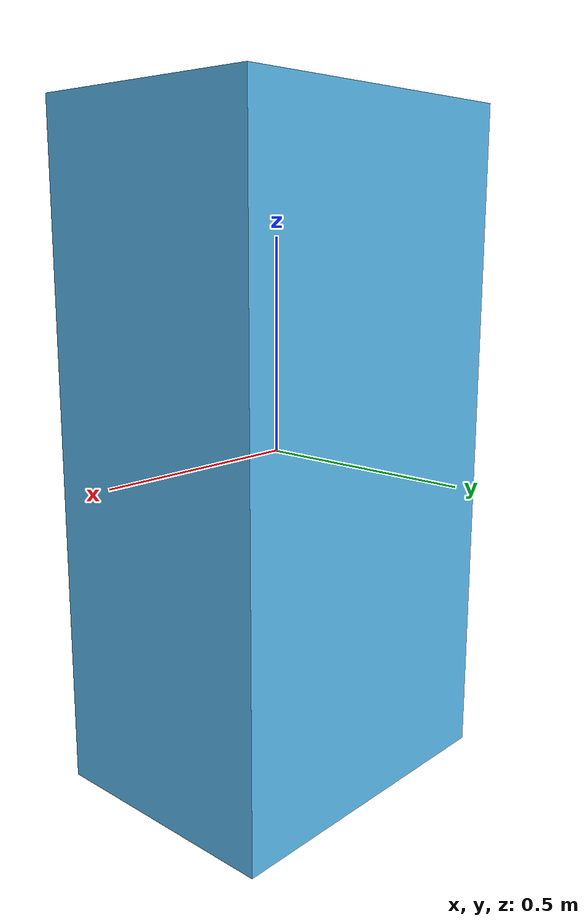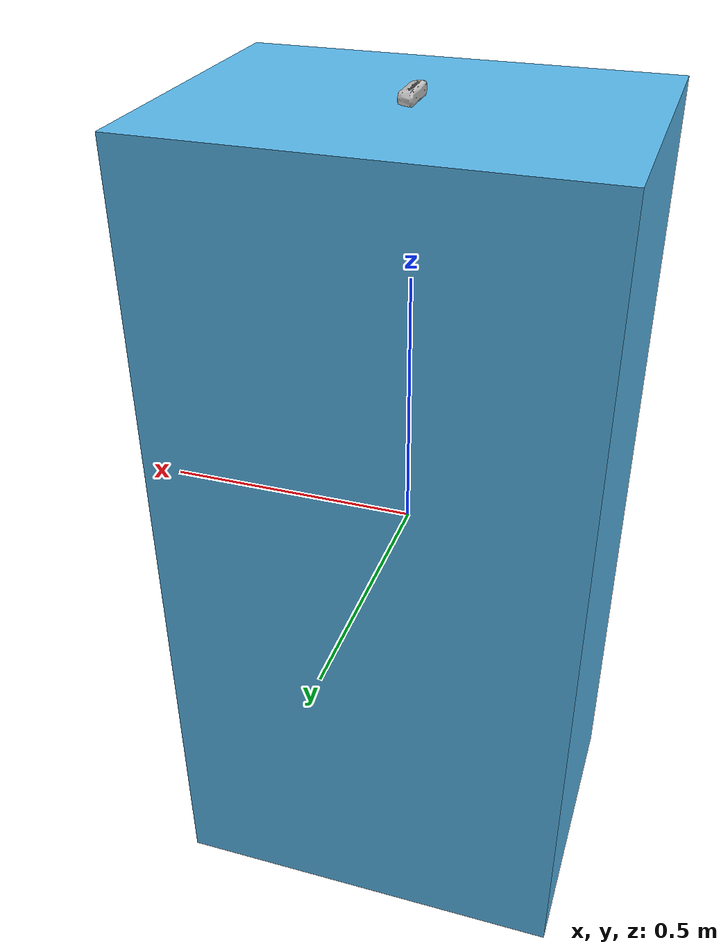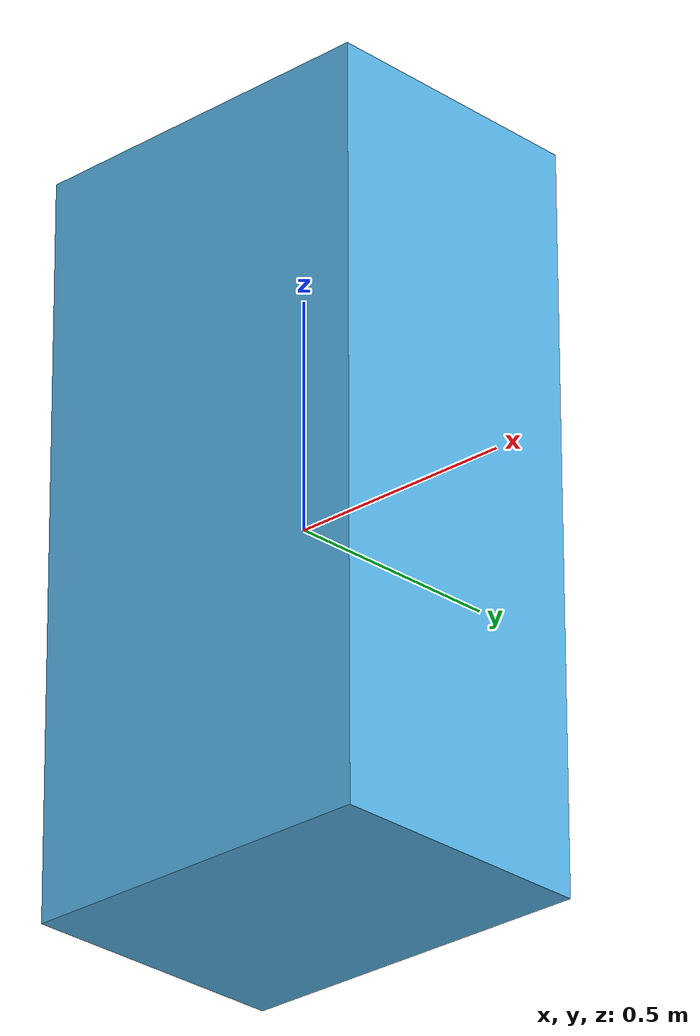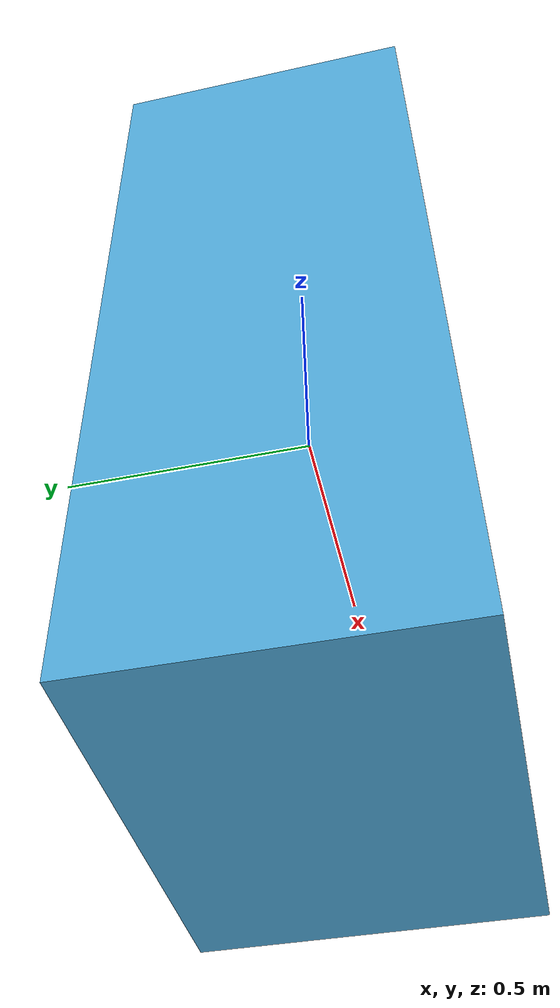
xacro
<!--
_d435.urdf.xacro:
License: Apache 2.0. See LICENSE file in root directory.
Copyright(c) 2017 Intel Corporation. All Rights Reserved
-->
<?xml version="1.0"?>
<robot name="test_flat_plate_camera_bracket" xmlns:xacro="http://ros.org/wiki/xacro">
  <xacro:include filename="$(find flat_plate_camera_bracket_description)/urdf/flat_plate_camera_bracket.urdf.xacro"/>
  <xacro:include filename="$(find realsense2_description)/urdf/_d435.urdf.xacro"/>
  <link name="world"/>
  <joint name="world_to_base" type="fixed"><parent link="world"/><child link="base_link"/></joint>
  <xacro:sensor_d435 parent="camera_mount_link" use_nominal_extrinsics="true"><origin xyz="0 0 0" rpy="0 0 0"/></xacro:sensor_d435>
</robot>

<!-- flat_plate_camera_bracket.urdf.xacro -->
<robot name="flat_plate_camera_bracket" xmlns:xacro="http://ros.org/wiki/xacro">
  <link name="base_link"/>
  <link name="flat_plate_camera_bracket_body">
    <visual><geometry><mesh filename="package://flat_plate_camera_bracket_description/meshes/visual/flat_plate_camera_bracket.stl" scale="1 1 1"/></geometry></visual>
    <collision><geometry><mesh filename="package://flat_plate_camera_bracket_description/meshes/collision/flat_plate_camera_bracket.stl" scale="1 1 1"/></geometry></collision>
    <inertial><mass value="5.0"/><origin xyz="0 0 0"/><inertia ixx="0.2" ixy="0" ixz="0" iyy="0.2" iyz="0" izz="0.2"/></inertial>
  </link>
  <joint name="flat_plate_camera_bracket_base_joint" type="fixed"><parent link="base_link"/><child link="flat_plate_camera_bracket_body"/></joint>
  <link name="camera_mount_link"/>
  <joint name="flat_plate_camera_bracket_camera_mount_joint" type="fixed"><parent link="flat_plate_camera_bracket_body"/><child link="camera_mount_link"/><origin xyz="0 0 0.8" rpy="0 0 0"/></joint>
</robot>

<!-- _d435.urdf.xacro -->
<robot name="sensor_d435" xmlns:xacro="http://ros.org/wiki/xacro">
  <!-- Includes -->
  <!-- Use a relative include so tests do not require ROS package lookups -->
  <xacro:include filename="_materials.urdf.xacro" />

  <xacro:macro name="sensor_d435" params="parent *origin name:=camera use_nominal_extrinsics:=false">
    <xacro:property name="M_PI" value="3.1415926535897931" />

    <!-- The following values are approximate, and the camera node
     publishing TF values with actual calibrated camera extrinsic values -->
    <xacro:property name="d435_cam_depth_to_infra1_offset" value="0.0"/>
    <xacro:property name="d435_cam_depth_to_infra2_offset" value="-0.050"/>
    <xacro:property name="d435_cam_depth_to_color_offset" value="0.015"/>

    <!-- The following values model the aluminum peripherial case for the
  	D435 camera, with the camera joint represented by the actual
  	peripherial camera tripod mount -->
    <xacro:property name="d435_cam_width" value="0.090"/>
    <xacro:property name="d435_cam_height" value="0.025"/>
    <xacro:property name="d435_cam_depth" value="0.02505"/>
    <xacro:property name="d435_cam_mount_from_center_offset" value="0.0149"/>
    <!-- glass cover is 0.1 mm inwards from front aluminium plate -->
    <xacro:property name="d435_glass_to_front" value="0.1e-3"/>
    <!-- see datasheet Revision 007, Fig. 4-4 page 65 -->
    <xacro:property name="d435_zero_depth_to_glass" value="4.2e-3"/>
    <!-- convenience precomputation to avoid clutter-->
    <xacro:property name="d435_mesh_x_offset" value="${d435_cam_mount_from_center_offset-d435_glass_to_front-d435_zero_depth_to_glass}"/>

    <!-- The following offset is relative the the physical D435 camera peripherial
  	camera tripod mount -->
    <xacro:property name="d435_cam_depth_px" value="${d435_cam_mount_from_center_offset}"/>
    <xacro:property name="d435_cam_depth_py" value="0.0175"/>
    <xacro:property name="d435_cam_depth_pz" value="${d435_cam_height/2}"/>

    <!-- camera body, with origin at bottom screw mount -->
    <joint name="${name}_joint" type="fixed">
      <xacro:insert_block name="origin" />
      <parent link="${parent}"/>
      <child link="${name}_bottom_screw_frame" />
    </joint>
    <link name="${name}_bottom_screw_frame"/>

    <joint name="${name}_link_joint" type="fixed">
      <origin xyz="${d435_mesh_x_offset} ${d435_cam_depth_py} ${d435_cam_depth_pz}" rpy="0 0 0"/>
      <parent link="${name}_bottom_screw_frame"/>
      <child link="${name}_link" />
    </joint>

    <link name="${name}_link">
      <visual>
        <!-- the mesh origin is at front plate in between the two infrared camera axes -->
        <origin xyz="${d435_zero_depth_to_glass + d435_glass_to_front} ${-d435_cam_depth_py} 0" rpy="${M_PI/2} 0 ${M_PI/2}"/>
        <geometry>
	        <mesh filename="package://realsense2_description/meshes/d435.dae" />
        </geometry>
      </visual>
      <collision>
        <origin xyz="0 ${-d435_cam_depth_py} 0" rpy="0 0 0"/>
        <geometry>
          <box size="${d435_cam_depth} ${d435_cam_width} ${d435_cam_height}"/>
        </geometry>
      </collision>
      <inertial>
        <!-- The following are not reliable values, and should not be used for modeling -->
        <mass value="0.564" />
        <origin xyz="0 0 0" />
        <inertia ixx="0.003881243" ixy="0.0" ixz="0.0" iyy="0.000498940" iyz="0.0" izz="0.003879257" />
      </inertial>
    </link>

    <!-- Use the nominal extrinsics between camera frames if the calibrated extrinsics aren't being published. e.g. running the device in simulation  -->
    <xacro:if value="${use_nominal_extrinsics}">
      <!-- camera depth joints and links -->
      <joint name="${name}_depth_joint" type="fixed">
        <origin xyz="0 0 0" rpy="0 0 0"/>
        <parent link="${name}_link"/>
        <child link="${name}_depth_frame" />
      </joint>
      <link name="${name}_depth_frame"/>

      <joint name="${name}_depth_optical_joint" type="fixed">
        <origin xyz="0 0 0" rpy="${-M_PI/2} 0 ${-M_PI/2}" />
        <parent link="${name}_depth_frame" />
        <child link="${name}_depth_optical_frame" />
      </joint>
      <link name="${name}_depth_optical_frame"/>

      <!-- camera left IR joints and links -->
      <joint name="${name}_infra1_joint" type="fixed">
        <origin xyz="0 ${d435_cam_depth_to_infra1_offset} 0" rpy="0 0 0" />
        <parent link="${name}_link" />
        <child link="${name}_infra1_frame" />
      </joint>
      <link name="${name}_infra1_frame"/>

      <joint name="${name}_infra1_optical_joint" type="fixed">
        <origin xyz="0 0 0" rpy="${-M_PI/2} 0 ${-M_PI/2}" />
        <parent link="${name}_infra1_frame" />
        <child link="${name}_infra1_optical_frame" />
      </joint>
      <link name="${name}_infra1_optical_frame"/>

      <!-- camera right IR joints and links -->
      <joint name="${name}_infra2_joint" type="fixed">
        <origin xyz="0 ${d435_cam_depth_to_infra2_offset} 0" rpy="0 0 0" />
        <parent link="${name}_link" />
        <child link="${name}_infra2_frame" />
      </joint>
      <link name="${name}_infra2_frame"/>

      <joint name="${name}_infra2_optical_joint" type="fixed">
        <origin xyz="0 0 0" rpy="${-M_PI/2} 0 ${-M_PI/2}" />
        <parent link="${name}_infra2_frame" />
        <child link="${name}_infra2_optical_frame" />
      </joint>
      <link name="${name}_infra2_optical_frame"/>

      <!-- camera color joints and links -->
      <joint name="${name}_color_joint" type="fixed">
        <origin xyz="0 ${d435_cam_depth_to_color_offset} 0" rpy="0 0 0" />
        <parent link="${name}_link" />
        <child link="${name}_color_frame" />
      </joint>
      <link name="${name}_color_frame"/>

      <joint name="${name}_color_optical_joint" type="fixed">
        <origin xyz="0 0 0" rpy="${-M_PI/2} 0 ${-M_PI/2}" />
        <parent link="${name}_color_frame" />
        <child link="${name}_color_optical_frame" />
      </joint>
      <link name="${name}_color_optical_frame"/>
    </xacro:if>
  </xacro:macro>
</robot>
